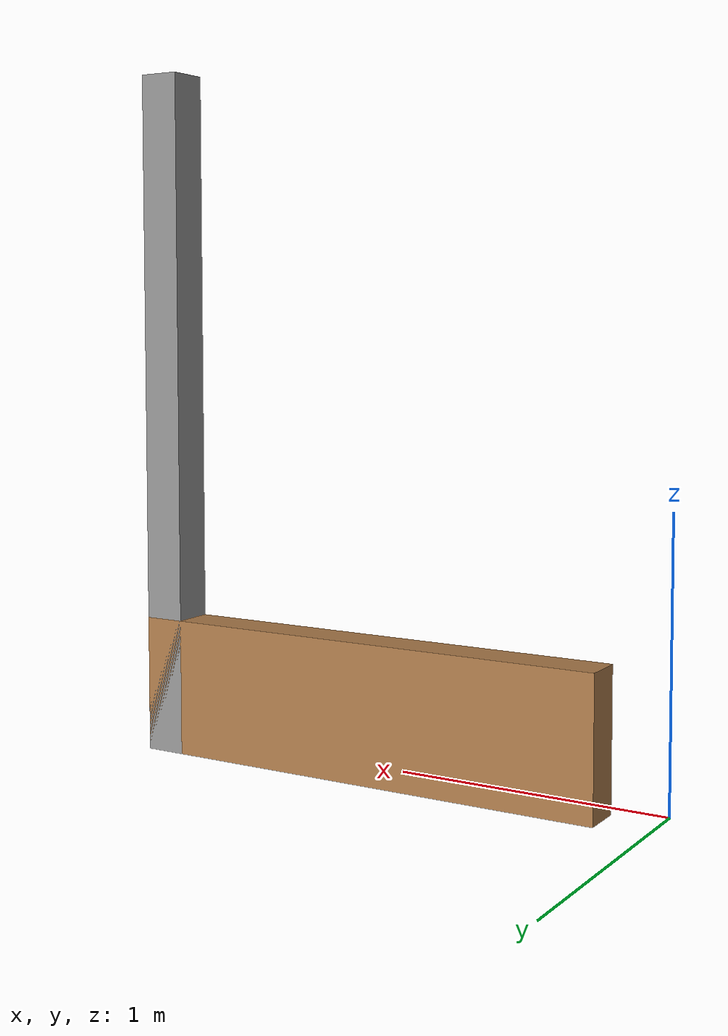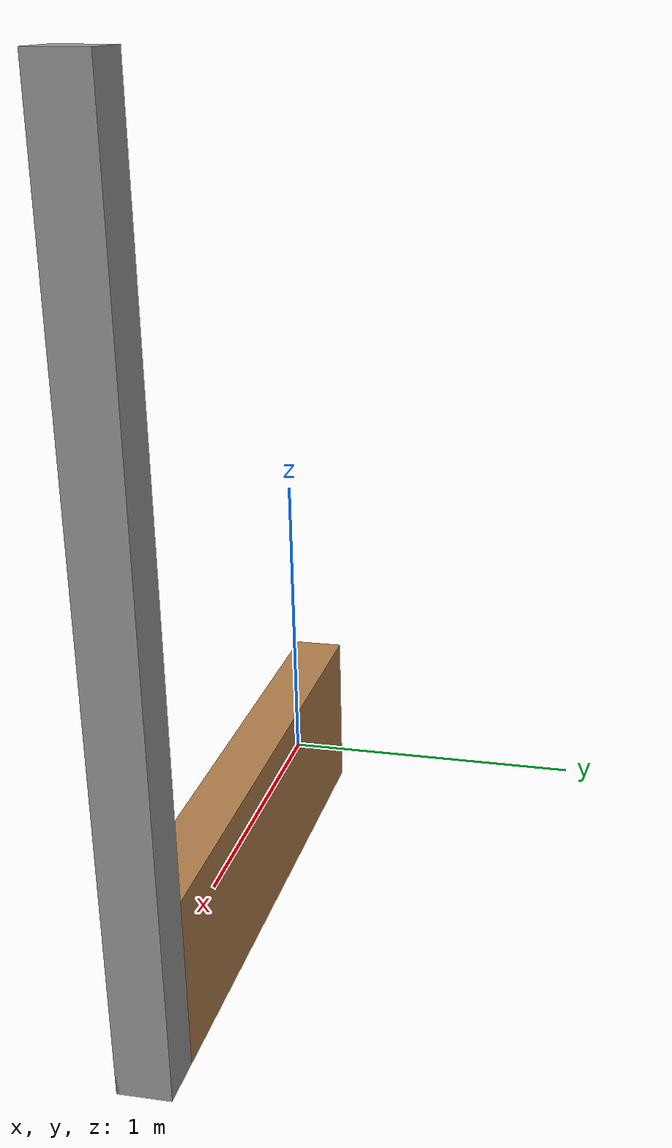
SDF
<?xml version='1.0'?>
<sdf version='1.7'>
  <model name='wood_2metros'>
    <pose>0.989 0.1065 0 0 -0 0</pose>
    <link name='Wall_0'>
      <collision name='Wall_0_Collision'>
        <geometry>
          <box>
            <size>1.8 0.15 0.5</size>
          </box>
        </geometry>
        <pose>0 0 0.25 0 -0 0</pose>
      </collision>
      <visual name='Wall_0_Visual'>
        <pose>0 0 0.25 0 -0 0</pose>
        <geometry>
          <box>
            <size>1.8 0.15 0.5</size>
          </box>
        </geometry>
        <material>
          <script>
            <uri>file://media/materials/scripts/gazebo.material</uri>
            <name>Gazebo/Wood</name>
          </script>
          <ambient>1 1 1 1</ambient>
        </material>
        <meta>
          <layer>0</layer>
        </meta>
      </visual>
      <pose>0.089 0.0315 0 0 -0 0</pose>
    </link>
    <link name='Wall_1'>
      <collision name='Wall_1_Collision'>
        <geometry>
          <box>
            <size>0.15 0.15 2.5</size>
          </box>
        </geometry>
        <pose>0 0 1.25 0 -0 0</pose>
      </collision>
      <visual name='Wall_1_Visual'>
        <pose>0 0 1.25 0 -0 0</pose>
        <geometry>
          <box>
            <size>0.15 0.15 2.5</size>
          </box>
        </geometry>
        <material>
          <script>
            <uri>file://media/materials/scripts/gazebo.material</uri>
            <name>Gazebo/Grey</name>
          </script>
          <ambient>1 1 1 1</ambient>
        </material>
        <meta>
          <layer>0</layer>
        </meta>
      </visual>
      <pose>0.914 0.0315 0 0 -0 0</pose>
    </link>
    <static>1</static>
  </model>
</sdf>
